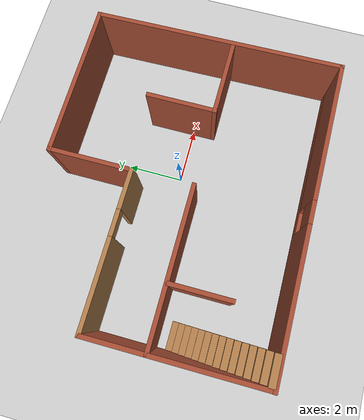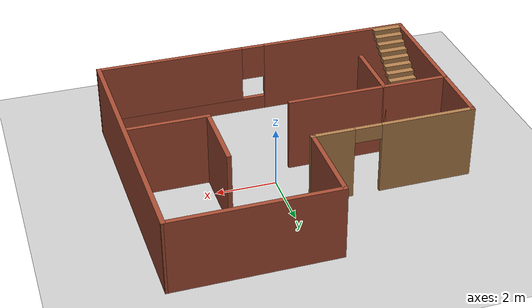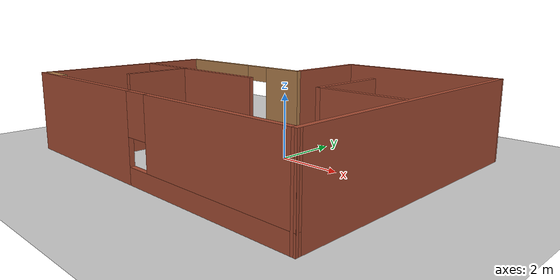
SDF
<sdf version="1.7">
 <world name="default">
  <light name="sun" type="directional">
   <pose>0 0 10 0 -0 0</pose>
   <diffuse>0.8 0.8 0.8 1</diffuse>
   <specular>0.2 0.2 0.2 1</specular>
   <attenuation>
    <range>1000</range>
    <constant>0.9</constant>
    <linear>0.01</linear>
    <quadratic>0.001</quadratic>
   </attenuation>
   <direction>-0.5 0.1 -0.9</direction>
   <spot><inner_angle>0</inner_angle><outer_angle>0</outer_angle><falloff>0</falloff></spot>
  </light>
  <model name="ground_plane">
   <static>1</static>
   <link name="link">
    <collision name="collision">
     <geometry><plane><normal>0 0 1</normal><size>100 100</size></plane></geometry>
     <surface>
      <contact><collide_bitmask>65535</collide_bitmask></contact>
      <friction><ode><mu>100</mu><mu2>50</mu2></ode></friction>
     </surface>
    </collision>
    <visual name="visual">
     <cast_shadows>0</cast_shadows>
     <geometry><plane><normal>0 0 1</normal><size>100 100</size></plane></geometry>
     <material>
      <script><uri>file://media/materials/scripts/gazebo.material</uri><name>Gazebo/Grey</name></script>
     </material>
    </visual>
   </link>
  </model>
  <gravity>0 0 -9.8</gravity>
  <magnetic_field>6e-06 2.3e-05 -4.2e-05</magnetic_field>
  <atmosphere type="adiabatic"/>
  <physics type="ode">
   <max_step_size>0.001</max_step_size>
   <real_time_factor>1</real_time_factor>
   <real_time_update_rate>1000</real_time_update_rate>
  </physics>
  <scene><ambient>0.4 0.4 0.4 1</ambient><background>0.7 0.7 0.7 1</background><shadows>1</shadows></scene>
  <spherical_coordinates>
   <surface_model>EARTH_WGS84</surface_model>
   <latitude_deg>0</latitude_deg>
   <longitude_deg>0</longitude_deg>
   <elevation>0</elevation>
   <heading_deg>0</heading_deg>
  </spherical_coordinates>
  <model name="my_world">
   <pose>-0.687389 -0.211526 0 0 -0 0</pose>
   <link name="Stairs_0">
    <visual name="Stairs_0_Visual_0">
     <pose>-4.86387 -1.03428 0.083333 0 -0 0</pose>
     <geometry><box><size>1 0.233333 0.166667</size></box></geometry>
     <material>
      <script><uri>file://media/materials/scripts/gazebo.material</uri><name>Gazebo/Wood</name></script>
      <ambient>1 1 1 1</ambient>
     </material>
     <meta><layer>0</layer></meta>
    </visual>
    <collision name="Stairs_0_Collision_0">
     <geometry><box><size>1 0.233333 0.166667</size></box></geometry>
     <pose>-4.86387 -1.03428 0.083333 0 -0 0</pose>
    </collision>
    <visual name="Stairs_0_Visual_1">
     <pose>-4.86387 -1.26762 0.25 0 -0 0</pose>
     <geometry><box><size>1 0.233333 0.166667</size></box></geometry>
     <material>
      <script><uri>file://media/materials/scripts/gazebo.material</uri><name>Gazebo/Wood</name></script>
      <ambient>1 1 1 1</ambient>
     </material>
     <meta><layer>0</layer></meta>
    </visual>
    <collision name="Stairs_0_Collision_1">
     <geometry><box><size>1 0.233333 0.166667</size></box></geometry>
     <pose>-4.86387 -1.26762 0.25 0 -0 0</pose>
    </collision>
    <visual name="Stairs_0_Visual_2">
     <pose>-4.86387 -1.50095 0.416667 0 -0 0</pose>
     <geometry><box><size>1 0.233333 0.166667</size></box></geometry>
     <material>
      <script><uri>file://media/materials/scripts/gazebo.material</uri><name>Gazebo/Wood</name></script>
      <ambient>1 1 1 1</ambient>
     </material>
     <meta><layer>0</layer></meta>
    </visual>
    <collision name="Stairs_0_Collision_2">
     <geometry><box><size>1 0.233333 0.166667</size></box></geometry>
     <pose>-4.86387 -1.50095 0.416667 0 -0 0</pose>
    </collision>
    <visual name="Stairs_0_Visual_3">
     <pose>-4.86387 -1.73428 0.583333 0 -0 0</pose>
     <geometry><box><size>1 0.233333 0.166667</size></box></geometry>
     <material>
      <script><uri>file://media/materials/scripts/gazebo.material</uri><name>Gazebo/Wood</name></script>
      <ambient>1 1 1 1</ambient>
     </material>
     <meta><layer>0</layer></meta>
    </visual>
    <collision name="Stairs_0_Collision_3">
     <geometry><box><size>1 0.233333 0.166667</size></box></geometry>
     <pose>-4.86387 -1.73428 0.583333 0 -0 0</pose>
    </collision>
    <visual name="Stairs_0_Visual_4">
     <pose>-4.86387 -1.96762 0.75 0 -0 0</pose>
     <geometry><box><size>1 0.233333 0.166667</size></box></geometry>
     <material>
      <script><uri>file://media/materials/scripts/gazebo.material</uri><name>Gazebo/Wood</name></script>
      <ambient>1 1 1 1</ambient>
     </material>
     <meta><layer>0</layer></meta>
    </visual>
    <collision name="Stairs_0_Collision_4">
     <geometry><box><size>1 0.233333 0.166667</size></box></geometry>
     <pose>-4.86387 -1.96762 0.75 0 -0 0</pose>
    </collision>
    <visual name="Stairs_0_Visual_5">
     <pose>-4.86387 -2.20095 0.916667 0 -0 0</pose>
     <geometry><box><size>1 0.233333 0.166667</size></box></geometry>
     <material>
      <script><uri>file://media/materials/scripts/gazebo.material</uri><name>Gazebo/Wood</name></script>
      <ambient>1 1 1 1</ambient>
     </material>
     <meta><layer>0</layer></meta>
    </visual>
    <collision name="Stairs_0_Collision_5">
     <geometry><box><size>1 0.233333 0.166667</size></box></geometry>
     <pose>-4.86387 -2.20095 0.916667 0 -0 0</pose>
    </collision>
    <visual name="Stairs_0_Visual_6">
     <pose>-4.86387 -2.43428 1.08333 0 -0 0</pose>
     <geometry><box><size>1 0.233333 0.166667</size></box></geometry>
     <material>
      <script><uri>file://media/materials/scripts/gazebo.material</uri><name>Gazebo/Wood</name></script>
      <ambient>1 1 1 1</ambient>
     </material>
     <meta><layer>0</layer></meta>
    </visual>
    <collision name="Stairs_0_Collision_6">
     <geometry><box><size>1 0.233333 0.166667</size></box></geometry>
     <pose>-4.86387 -2.43428 1.08333 0 -0 0</pose>
    </collision>
    <visual name="Stairs_0_Visual_7">
     <pose>-4.86387 -2.66762 1.25 0 -0 0</pose>
     <geometry><box><size>1 0.233333 0.166667</size></box></geometry>
     <material>
      <script><uri>file://media/materials/scripts/gazebo.material</uri><name>Gazebo/Wood</name></script>
      <ambient>1 1 1 1</ambient>
     </material>
     <meta><layer>0</layer></meta>
    </visual>
    <collision name="Stairs_0_Collision_7">
     <geometry><box><size>1 0.233333 0.166667</size></box></geometry>
     <pose>-4.86387 -2.66762 1.25 0 -0 0</pose>
    </collision>
    <visual name="Stairs_0_Visual_8">
     <pose>-4.86387 -2.90095 1.41667 0 -0 0</pose>
     <geometry><box><size>1 0.233333 0.166667</size></box></geometry>
     <material>
      <script><uri>file://media/materials/scripts/gazebo.material</uri><name>Gazebo/Wood</name></script>
      <ambient>1 1 1 1</ambient>
     </material>
     <meta><layer>0</layer></meta>
    </visual>
    <collision name="Stairs_0_Collision_8">
     <geometry><box><size>1 0.233333 0.166667</size></box></geometry>
     <pose>-4.86387 -2.90095 1.41667 0 -0 0</pose>
    </collision>
    <visual name="Stairs_0_Visual_9">
     <pose>-4.86387 -3.13428 1.58333 0 -0 0</pose>
     <geometry><box><size>1 0.233333 0.166667</size></box></geometry>
     <material>
      <script><uri>file://media/materials/scripts/gazebo.material</uri><name>Gazebo/Wood</name></script>
      <ambient>1 1 1 1</ambient>
     </material>
     <meta><layer>0</layer></meta>
    </visual>
    <collision name="Stairs_0_Collision_9">
     <geometry><box><size>1 0.233333 0.166667</size></box></geometry>
     <pose>-4.86387 -3.13428 1.58333 0 -0 0</pose>
    </collision>
    <visual name="Stairs_0_Visual_10">
     <pose>-4.86387 -3.36762 1.75 0 -0 0</pose>
     <geometry><box><size>1 0.233333 0.166667</size></box></geometry>
     <material>
      <script><uri>file://media/materials/scripts/gazebo.material</uri><name>Gazebo/Wood</name></script>
      <ambient>1 1 1 1</ambient>
     </material>
     <meta><layer>0</layer></meta>
    </visual>
    <collision name="Stairs_0_Collision_10">
     <geometry><box><size>1 0.233333 0.166667</size></box></geometry>
     <pose>-4.86387 -3.36762 1.75 0 -0 0</pose>
    </collision>
    <visual name="Stairs_0_Visual_11">
     <pose>-4.86387 -3.60095 1.91667 0 -0 0</pose>
     <geometry><box><size>1 0.233333 0.166667</size></box></geometry>
     <material>
      <script><uri>file://media/materials/scripts/gazebo.material</uri><name>Gazebo/Wood</name></script>
      <ambient>1 1 1 1</ambient>
     </material>
     <meta><layer>0</layer></meta>
    </visual>
    <collision name="Stairs_0_Collision_11">
     <geometry><box><size>1 0.233333 0.166667</size></box></geometry>
     <pose>-4.86387 -3.60095 1.91667 0 -0 0</pose>
    </collision>
    <visual name="Stairs_0_Visual_12">
     <pose>-4.86387 -3.83428 2.08333 0 -0 0</pose>
     <geometry><box><size>1 0.233333 0.166667</size></box></geometry>
     <material>
      <script><uri>file://media/materials/scripts/gazebo.material</uri><name>Gazebo/Wood</name></script>
      <ambient>1 1 1 1</ambient>
     </material>
     <meta><layer>0</layer></meta>
    </visual>
    <collision name="Stairs_0_Collision_12">
     <geometry><box><size>1 0.233333 0.166667</size></box></geometry>
     <pose>-4.86387 -3.83428 2.08333 0 -0 0</pose>
    </collision>
    <visual name="Stairs_0_Visual_13">
     <pose>-4.86387 -4.06762 2.25 0 -0 0</pose>
     <geometry><box><size>1 0.233333 0.166667</size></box></geometry>
     <material>
      <script><uri>file://media/materials/scripts/gazebo.material</uri><name>Gazebo/Wood</name></script>
      <ambient>1 1 1 1</ambient>
     </material>
     <meta><layer>0</layer></meta>
    </visual>
    <collision name="Stairs_0_Collision_13">
     <geometry><box><size>1 0.233333 0.166667</size></box></geometry>
     <pose>-4.86387 -4.06762 2.25 0 -0 0</pose>
    </collision>
    <visual name="Stairs_0_Visual_14">
     <pose>-4.86387 -4.30095 2.41667 0 -0 0</pose>
     <geometry><box><size>1 0.233333 0.166667</size></box></geometry>
     <material>
      <script><uri>file://media/materials/scripts/gazebo.material</uri><name>Gazebo/Wood</name></script>
      <ambient>1 1 1 1</ambient>
     </material>
     <meta><layer>0</layer></meta>
    </visual>
    <collision name="Stairs_0_Collision_14">
     <geometry><box><size>1 0.233333 0.166667</size></box></geometry>
     <pose>-4.86387 -4.30095 2.41667 0 -0 0</pose>
    </collision>
   </link>
   <link name="Wall_32">
    <pose>-0.000605 -4.425 0 0 -0 0</pose>
    <visual name="Wall_32_Visual_0">
     <pose>-2.91578 0 1.25 0 -0 0</pose>
     <geometry><box><size>5.16844 0.15 2.5</size></box></geometry>
     <material>
      <script><uri>file://media/materials/scripts/gazebo.material</uri><name>Gazebo/Bricks</name></script>
      <ambient>1 1 1 1</ambient>
     </material>
     <meta><layer>0</layer></meta>
    </visual>
    <collision name="Wall_32_Collision_0">
     <geometry><box><size>5.16844 0.15 2.5</size></box></geometry>
     <pose>-2.91578 0 1.25 0 -0 0</pose>
    </collision>
    <visual name="Wall_32_Visual_1">
     <pose>2.58422 0 0.25 0 -0 0</pose>
     <geometry><box><size>5.83156 0.15 0.5</size></box></geometry>
     <material>
      <script><uri>file://media/materials/scripts/gazebo.material</uri><name>Gazebo/Bricks</name></script>
      <ambient>1 1 1 1</ambient>
     </material>
     <meta><layer>0</layer></meta>
    </visual>
    <collision name="Wall_32_Collision_1">
     <geometry><box><size>5.83156 0.15 0.5</size></box></geometry>
     <pose>2.58422 0 0.25 0 -0 0</pose>
    </collision>
    <visual name="Wall_32_Visual_2">
     <pose>2.98422 0 1.5 0 -0 0</pose>
     <geometry><box><size>5.03156 0.15 2</size></box></geometry>
     <material>
      <script><uri>file://media/materials/scripts/gazebo.material</uri><name>Gazebo/Bricks</name></script>
      <ambient>1 1 1 1</ambient>
     </material>
     <meta><layer>0</layer></meta>
    </visual>
    <collision name="Wall_32_Collision_2">
     <geometry><box><size>5.03156 0.15 2</size></box></geometry>
     <pose>2.98422 0 1.5 0 -0 0</pose>
    </collision>
    <visual name="Wall_32_Visual_3">
     <pose>0.06844 0 1.9 0 -0 0</pose>
     <geometry><box><size>0.8 0.15 1.2</size></box></geometry>
     <material>
      <script><uri>file://media/materials/scripts/gazebo.material</uri><name>Gazebo/Bricks</name></script>
      <ambient>1 1 1 1</ambient>
     </material>
     <meta><layer>0</layer></meta>
    </visual>
    <collision name="Wall_32_Collision_3">
     <geometry><box><size>0.8 0.15 1.2</size></box></geometry>
     <pose>0.06844 0 1.9 0 -0 0</pose>
    </collision>
   </link>
   <link name="Wall_33">
    <collision name="Wall_33_Collision">
     <geometry><box><size>9.00142 0.15 2.5</size></box></geometry>
     <pose>0 0 1.25 0 -0 0</pose>
    </collision>
    <visual name="Wall_33_Visual">
     <pose>0 0 1.25 0 -0 0</pose>
     <geometry><box><size>9.00142 0.15 2.5</size></box></geometry>
     <material>
      <script><uri>file://media/materials/scripts/gazebo.material</uri><name>Gazebo/Bricks</name></script>
      <ambient>1 1 1 1</ambient>
     </material>
     <meta><layer>0</layer></meta>
    </visual>
    <pose>5.35256 -0 0 0 -0 1.58703</pose>
   </link>
   <link name="Wall_34">
    <collision name="Wall_34_Collision">
     <geometry><box><size>5.5 0.15 2.5</size></box></geometry>
     <pose>0 0 1.25 0 -0 0</pose>
    </collision>
    <visual name="Wall_34_Visual">
     <pose>0 0 1.25 0 -0 0</pose>
     <geometry><box><size>5.5 0.15 2.5</size></box></geometry>
     <material>
      <script><uri>file://media/materials/scripts/gazebo.material</uri><name>Gazebo/Bricks</name></script>
      <ambient>1 1 1 1</ambient>
     </material>
     <meta><layer>0</layer></meta>
    </visual>
    <pose>2.60573 4.425 0 0 -0 3.14159</pose>
   </link>
   <link name="Wall_35">
    <collision name="Wall_35_Collision">
     <geometry><box><size>3 0.15 2.5</size></box></geometry>
     <pose>0 0 1.25 0 -0 0</pose>
    </collision>
    <visual name="Wall_35_Visual">
     <pose>0 0 1.25 0 -0 0</pose>
     <geometry><box><size>3 0.15 2.5</size></box></geometry>
     <material>
      <script><uri>file://media/materials/scripts/gazebo.material</uri><name>Gazebo/Bricks</name></script>
      <ambient>1 1 1 1</ambient>
     </material>
     <meta><layer>0</layer></meta>
    </visual>
    <pose>-0.069272 3 0 0 -0 -1.5708</pose>
   </link>
   <link name="Wall_36">
    <pose>-2.74427 1.575 0 0 -0 3.14159</pose>
    <visual name="Wall_36_Visual_0">
     <pose>-2.02981 0 1.25 0 -0 0</pose>
     <geometry><box><size>1.44037 0.15 2.5</size></box></geometry>
     <material>
      <script><uri>file://media/materials/scripts/gazebo.material</uri><name>Gazebo/Wood</name></script>
      <ambient>1 1 1 1</ambient>
     </material>
     <meta><layer>0</layer></meta>
    </visual>
    <collision name="Wall_36_Collision_0">
     <geometry><box><size>1.44037 0.15 2.5</size></box></geometry>
     <pose>-2.02981 0 1.25 0 -0 0</pose>
    </collision>
    <visual name="Wall_36_Visual_1">
     <pose>1.17019 0 1.25 0 -0 0</pose>
     <geometry><box><size>3.15963 0.15 2.5</size></box></geometry>
     <material>
      <script><uri>file://media/materials/scripts/gazebo.material</uri><name>Gazebo/Wood</name></script>
      <ambient>1 1 1 1</ambient>
     </material>
     <meta><layer>0</layer></meta>
    </visual>
    <collision name="Wall_36_Collision_1">
     <geometry><box><size>3.15963 0.15 2.5</size></box></geometry>
     <pose>1.17019 0 1.25 0 -0 0</pose>
    </collision>
    <visual name="Wall_36_Visual_2">
     <pose>-0.859627 0 2.25 0 -0 0</pose>
     <geometry><box><size>0.9 0.15 0.5</size></box></geometry>
     <material>
      <script><uri>file://media/materials/scripts/gazebo.material</uri><name>Gazebo/Wood</name></script>
      <ambient>1 1 1 1</ambient>
     </material>
     <meta><layer>0</layer></meta>
    </visual>
    <collision name="Wall_36_Collision_2">
     <geometry><box><size>0.9 0.15 0.5</size></box></geometry>
     <pose>-0.859627 0 2.25 0 -0 0</pose>
    </collision>
   </link>
   <link name="Wall_37">
    <collision name="Wall_37_Collision">
     <geometry><box><size>6 0.15 2.5</size></box></geometry>
     <pose>0 0 1.25 0 -0 0</pose>
    </collision>
    <visual name="Wall_37_Visual">
     <pose>0 0 1.25 0 -0 0</pose>
     <geometry><box><size>6 0.15 2.5</size></box></geometry>
     <material>
      <script><uri>file://media/materials/scripts/gazebo.material</uri><name>Gazebo/Bricks</name></script>
      <ambient>1 1 1 1</ambient>
     </material>
     <meta><layer>0</layer></meta>
    </visual>
    <pose>-5.41927 -1.35 0 0 -0 -1.5708</pose>
   </link>
   <link name="Wall_39">
    <collision name="Wall_39_Collision">
     <geometry><box><size>2.75 0.15 2.5</size></box></geometry>
     <pose>0 0 1.25 0 -0 0</pose>
    </collision>
    <visual name="Wall_39_Visual">
     <pose>0 0 1.25 0 -0 0</pose>
     <geometry><box><size>2.75 0.15 2.5</size></box></geometry>
     <material>
      <script><uri>file://media/materials/scripts/gazebo.material</uri><name>Gazebo/Bricks</name></script>
      <ambient>1 1 1 1</ambient>
     </material>
     <meta><layer>0</layer></meta>
    </visual>
    <pose>3.97081 -0.5396 0 0 -0 3.14159</pose>
   </link>
   <link name="Wall_40">
    <collision name="Wall_40_Collision">
     <geometry><box><size>2.5 0.15 2.5</size></box></geometry>
     <pose>0 0 1.25 0 -0 0</pose>
    </collision>
    <visual name="Wall_40_Visual">
     <pose>0 0 1.25 0 -0 0</pose>
     <geometry><box><size>2.5 0.15 2.5</size></box></geometry>
     <material>
      <script><uri>file://media/materials/scripts/gazebo.material</uri><name>Gazebo/Bricks</name></script>
      <ambient>1 1 1 1</ambient>
     </material>
     <meta><layer>0</layer></meta>
    </visual>
    <pose>2.67081 0.6354 0 0 -0 1.5708</pose>
   </link>
   <link name="Wall_43">
    <collision name="Wall_43_Collision">
     <geometry><box><size>5.5 0.15 2.5</size></box></geometry>
     <pose>0 0 1.25 0 -0 0</pose>
    </collision>
    <visual name="Wall_43_Visual">
     <pose>0 0 1.25 0 -0 0</pose>
     <geometry><box><size>5.5 0.15 2.5</size></box></geometry>
     <material>
      <script><uri>file://media/materials/scripts/gazebo.material</uri><name>Gazebo/Bricks</name></script>
      <ambient>1 1 1 1</ambient>
     </material>
     <meta><layer>0</layer></meta>
    </visual>
    <pose>-2.72087 -0.5396 0 0 -0 0</pose>
   </link>
   <link name="Wall_45">
    <collision name="Wall_45_Collision">
     <geometry><box><size>2.25 0.15 2.5</size></box></geometry>
     <pose>0 0 1.25 0 -0 0</pose>
    </collision>
    <visual name="Wall_45_Visual">
     <pose>0 0 1.25 0 -0 0</pose>
     <geometry><box><size>2.25 0.15 2.5</size></box></geometry>
     <material>
      <script><uri>file://media/materials/scripts/gazebo.material</uri><name>Gazebo/Bricks</name></script>
      <ambient>1 1 1 1</ambient>
     </material>
     <meta><layer>0</layer></meta>
    </visual>
    <pose>-3.26786 -1.5896 0 0 -0 -1.5708</pose>
   </link>
   <static>1</static>
  </model>
 </world>
</sdf>
